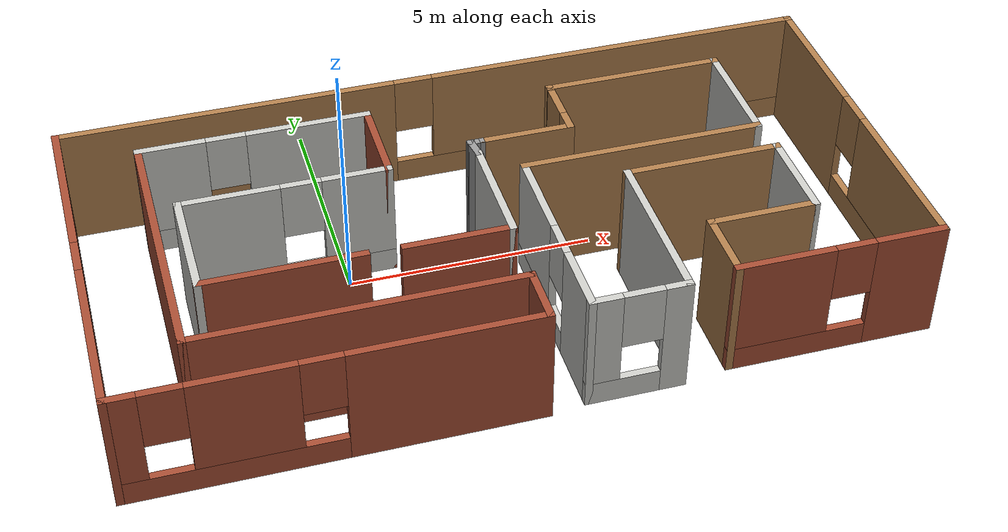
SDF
<?xml version='1.0'?>
<sdf version='1.7'>
  <model name='group.world'>
    <pose>2.65647 -0.719207 0 0 -0 0</pose>
    <link name='Wall_12'>
      <collision name='Wall_12_Collision'>
        <geometry>
          <box>
            <size>3.25 0.15 2.5</size>
          </box>
        </geometry>
        <pose>0 0 1.25 0 -0 0</pose>
      </collision>
      <visual name='Wall_12_Visual'>
        <pose>0 0 1.25 0 -0 0</pose>
        <geometry>
          <box>
            <size>3.25 0.15 2.5</size>
          </box>
        </geometry>
        <material>
          <script>
            <uri>file://media/materials/scripts/gazebo.material</uri>
            <name>Gazebo/Bricks</name>
          </script>
          <ambient>1 1 1 1</ambient>
        </material>
        <meta>
          <layer>0</layer>
        </meta>
      </visual>
      <pose>-4.25 -1.3 0 0 -0 3.14159</pose>
    </link>
    <link name='Wall_13'>
      <collision name='Wall_13_Collision'>
        <geometry>
          <box>
            <size>2.5 0.15 2.5</size>
          </box>
        </geometry>
        <pose>0 0 1.25 0 -0 0</pose>
      </collision>
      <visual name='Wall_13_Visual'>
        <pose>0 0 1.25 0 -0 0</pose>
        <geometry>
          <box>
            <size>2.5 0.15 2.5</size>
          </box>
        </geometry>
        <material>
          <script>
            <uri>file://media/materials/scripts/gazebo.material</uri>
            <name>Gazebo/CeilingTiled</name>
          </script>
          <ambient>1 1 1 1</ambient>
        </material>
        <meta>
          <layer>0</layer>
        </meta>
      </visual>
      <pose>-5.8 -0.125 0 0 -0 1.5708</pose>
    </link>
    <link name='Wall_14'>
      <pose>-3.75 1.05 0 0 -0 0</pose>
      <visual name='Wall_14_Visual_0'>
        <pose>-1.1042 0 1.25 0 -0 0</pose>
        <geometry>
          <box>
            <size>2.0416 0.15 2.5</size>
          </box>
        </geometry>
        <material>
          <script>
            <uri>file://media/materials/scripts/gazebo.material</uri>
            <name>Gazebo/CeilingTiled</name>
          </script>
          <ambient>1 1 1 1</ambient>
        </material>
        <meta>
          <layer>0</layer>
        </meta>
      </visual>
      <collision name='Wall_14_Collision_0'>
        <geometry>
          <box>
            <size>2.0416 0.15 2.5</size>
          </box>
        </geometry>
        <pose>-1.1042 0 1.25 0 -0 0</pose>
      </collision>
      <visual name='Wall_14_Visual_1'>
        <pose>1.0208 0 0.25 0 -0 0</pose>
        <geometry>
          <box>
            <size>2.2084 0.15 0.5</size>
          </box>
        </geometry>
        <material>
          <script>
            <uri>file://media/materials/scripts/gazebo.material</uri>
            <name>Gazebo/CeilingTiled</name>
          </script>
          <ambient>1 1 1 1</ambient>
        </material>
        <meta>
          <layer>0</layer>
        </meta>
      </visual>
      <collision name='Wall_14_Collision_1'>
        <geometry>
          <box>
            <size>2.2084 0.15 0.5</size>
          </box>
        </geometry>
        <pose>1.0208 0 0.25 0 -0 0</pose>
      </collision>
      <visual name='Wall_14_Visual_2'>
        <pose>1.4208 0 1.5 0 -0 0</pose>
        <geometry>
          <box>
            <size>1.4084 0.15 2</size>
          </box>
        </geometry>
        <material>
          <script>
            <uri>file://media/materials/scripts/gazebo.material</uri>
            <name>Gazebo/CeilingTiled</name>
          </script>
          <ambient>1 1 1 1</ambient>
        </material>
        <meta>
          <layer>0</layer>
        </meta>
      </visual>
      <collision name='Wall_14_Collision_2'>
        <geometry>
          <box>
            <size>1.4084 0.15 2</size>
          </box>
        </geometry>
        <pose>1.4208 0 1.5 0 -0 0</pose>
      </collision>
      <visual name='Wall_14_Visual_3'>
        <pose>0.316603 0 1.9 0 -0 0</pose>
        <geometry>
          <box>
            <size>0.8 0.15 1.2</size>
          </box>
        </geometry>
        <material>
          <script>
            <uri>file://media/materials/scripts/gazebo.material</uri>
            <name>Gazebo/CeilingTiled</name>
          </script>
          <ambient>1 1 1 1</ambient>
        </material>
        <meta>
          <layer>0</layer>
        </meta>
      </visual>
      <collision name='Wall_14_Collision_3'>
        <geometry>
          <box>
            <size>0.8 0.15 1.2</size>
          </box>
        </geometry>
        <pose>0.316603 0 1.9 0 -0 0</pose>
      </collision>
    </link>
    <link name='Wall_15'>
      <collision name='Wall_15_Collision'>
        <geometry>
          <box>
            <size>2 0.15 2.5</size>
          </box>
        </geometry>
        <pose>0 0 1.25 0 -0 0</pose>
      </collision>
      <visual name='Wall_15_Visual'>
        <pose>0 0 1.25 0 -0 0</pose>
        <geometry>
          <box>
            <size>2 0.15 2.5</size>
          </box>
        </geometry>
        <material>
          <script>
            <uri>file://media/materials/scripts/gazebo.material</uri>
            <name>Gazebo/Bricks</name>
          </script>
          <ambient>1 1 1 1</ambient>
        </material>
        <meta>
          <layer>0</layer>
        </meta>
      </visual>
      <pose>-1.7 1.975 0 0 -0 1.5708</pose>
    </link>
    <link name='Wall_16'>
      <pose>-4 2.9 0 0 -0 3.14159</pose>
      <visual name='Wall_16_Visual_0'>
        <pose>-1.10471 0 1.25 0 -0 0</pose>
        <geometry>
          <box>
            <size>2.54058 0.15 2.5</size>
          </box>
        </geometry>
        <material>
          <script>
            <uri>file://media/materials/scripts/gazebo.material</uri>
            <name>Gazebo/CeilingTiled</name>
          </script>
          <ambient>1 1 1 1</ambient>
        </material>
        <meta>
          <layer>0</layer>
        </meta>
      </visual>
      <collision name='Wall_16_Collision_0'>
        <geometry>
          <box>
            <size>2.54058 0.15 2.5</size>
          </box>
        </geometry>
        <pose>-1.10471 0 1.25 0 -0 0</pose>
      </collision>
      <visual name='Wall_16_Visual_1'>
        <pose>1.27029 0 0.25 0 -0 0</pose>
        <geometry>
          <box>
            <size>2.20942 0.15 0.5</size>
          </box>
        </geometry>
        <material>
          <script>
            <uri>file://media/materials/scripts/gazebo.material</uri>
            <name>Gazebo/CeilingTiled</name>
          </script>
          <ambient>1 1 1 1</ambient>
        </material>
        <meta>
          <layer>0</layer>
        </meta>
      </visual>
      <collision name='Wall_16_Collision_1'>
        <geometry>
          <box>
            <size>2.20942 0.15 0.5</size>
          </box>
        </geometry>
        <pose>1.27029 0 0.25 0 -0 0</pose>
      </collision>
      <visual name='Wall_16_Visual_2'>
        <pose>1.67029 0 1.5 0 -0 0</pose>
        <geometry>
          <box>
            <size>1.40942 0.15 2</size>
          </box>
        </geometry>
        <material>
          <script>
            <uri>file://media/materials/scripts/gazebo.material</uri>
            <name>Gazebo/CeilingTiled</name>
          </script>
          <ambient>1 1 1 1</ambient>
        </material>
        <meta>
          <layer>0</layer>
        </meta>
      </visual>
      <collision name='Wall_16_Collision_2'>
        <geometry>
          <box>
            <size>1.40942 0.15 2</size>
          </box>
        </geometry>
        <pose>1.67029 0 1.5 0 -0 0</pose>
      </collision>
      <visual name='Wall_16_Visual_3'>
        <pose>0.565578 0 1.9 0 -0 0</pose>
        <geometry>
          <box>
            <size>0.8 0.15 1.2</size>
          </box>
        </geometry>
        <material>
          <script>
            <uri>file://media/materials/scripts/gazebo.material</uri>
            <name>Gazebo/CeilingTiled</name>
          </script>
          <ambient>1 1 1 1</ambient>
        </material>
        <meta>
          <layer>0</layer>
        </meta>
      </visual>
      <collision name='Wall_16_Collision_3'>
        <geometry>
          <box>
            <size>0.8 0.15 1.2</size>
          </box>
        </geometry>
        <pose>0.565578 0 1.9 0 -0 0</pose>
      </collision>
    </link>
    <link name='Wall_17'>
      <collision name='Wall_17_Collision'>
        <geometry>
          <box>
            <size>5.75 0.15 2.5</size>
          </box>
        </geometry>
        <pose>0 0 1.25 0 -0 0</pose>
      </collision>
      <visual name='Wall_17_Visual'>
        <pose>0 0 1.25 0 -0 0</pose>
        <geometry>
          <box>
            <size>5.75 0.15 2.5</size>
          </box>
        </geometry>
        <material>
          <script>
            <uri>file://media/materials/scripts/gazebo.material</uri>
            <name>Gazebo/Bricks</name>
          </script>
          <ambient>1 1 1 1</ambient>
        </material>
        <meta>
          <layer>0</layer>
        </meta>
      </visual>
      <pose>-6.3 0.1 0 0 -0 -1.5708</pose>
    </link>
    <link name='Wall_18'>
      <collision name='Wall_18_Collision'>
        <geometry>
          <box>
            <size>6.5 0.15 2.5</size>
          </box>
        </geometry>
        <pose>0 0 1.25 0 -0 0</pose>
      </collision>
      <visual name='Wall_18_Visual'>
        <pose>0 0 1.25 0 -0 0</pose>
        <geometry>
          <box>
            <size>6.5 0.15 2.5</size>
          </box>
        </geometry>
        <material>
          <script>
            <uri>file://media/materials/scripts/gazebo.material</uri>
            <name>Gazebo/Bricks</name>
          </script>
          <ambient>1 1 1 1</ambient>
        </material>
        <meta>
          <layer>0</layer>
        </meta>
      </visual>
      <pose>-3.125 -2.7 0 0 -0 0</pose>
    </link>
    <link name='Wall_19'>
      <collision name='Wall_19_Collision'>
        <geometry>
          <box>
            <size>1.25 0.15 2.5</size>
          </box>
        </geometry>
        <pose>0 0 1.25 0 -0 0</pose>
      </collision>
      <visual name='Wall_19_Visual'>
        <pose>0 0 1.25 0 -0 0</pose>
        <geometry>
          <box>
            <size>1.25 0.15 2.5</size>
          </box>
        </geometry>
        <material>
          <script>
            <uri>file://media/materials/scripts/gazebo.material</uri>
            <name>Gazebo/Bricks</name>
          </script>
          <ambient>1 1 1 1</ambient>
        </material>
        <meta>
          <layer>0</layer>
        </meta>
      </visual>
      <pose>0.05 -3.25 0 0 -0 -1.5708</pose>
    </link>
    <link name='Wall_2'>
      <pose>-1.32163 -1.31575 0 0 -0 0</pose>
      <visual name='Wall_2_Visual_0'>
        <pose>0 0 0.25 0 -0 0</pose>
        <geometry>
          <box>
            <size>3 0.15 0.5</size>
          </box>
        </geometry>
        <material>
          <script>
            <uri>file://media/materials/scripts/gazebo.material</uri>
            <name>Gazebo/Bricks</name>
          </script>
          <ambient>1 1 1 1</ambient>
        </material>
        <meta>
          <layer>0</layer>
        </meta>
      </visual>
      <collision name='Wall_2_Collision_0'>
        <geometry>
          <box>
            <size>3 0.15 0.5</size>
          </box>
        </geometry>
        <pose>0 0 0.25 0 -0 0</pose>
      </collision>
      <visual name='Wall_2_Visual_1'>
        <pose>0.391426 0 1.5 0 -0 0</pose>
        <geometry>
          <box>
            <size>2.21715 0.15 2</size>
          </box>
        </geometry>
        <material>
          <script>
            <uri>file://media/materials/scripts/gazebo.material</uri>
            <name>Gazebo/Bricks</name>
          </script>
          <ambient>1 1 1 1</ambient>
        </material>
        <meta>
          <layer>0</layer>
        </meta>
      </visual>
      <collision name='Wall_2_Collision_1'>
        <geometry>
          <box>
            <size>2.21715 0.15 2</size>
          </box>
        </geometry>
        <pose>0.391426 0 1.5 0 -0 0</pose>
      </collision>
    </link>
    <link name='Wall_20'>
      <pose>-3.875 -3.8 0 0 -0 3.14159</pose>
      <visual name='Wall_20_Visual_0'>
        <pose>-2.10854 0 1.25 0 -0 0</pose>
        <geometry>
          <box>
            <size>3.78292 0.15 2.5</size>
          </box>
        </geometry>
        <material>
          <script>
            <uri>file://media/materials/scripts/gazebo.material</uri>
            <name>Gazebo/Bricks</name>
          </script>
          <ambient>1 1 1 1</ambient>
        </material>
        <meta>
          <layer>0</layer>
        </meta>
      </visual>
      <collision name='Wall_20_Collision_0'>
        <geometry>
          <box>
            <size>3.78292 0.15 2.5</size>
          </box>
        </geometry>
        <pose>-2.10854 0 1.25 0 -0 0</pose>
      </collision>
      <visual name='Wall_20_Visual_1'>
        <pose>1.89146 0 0.25 0 -0 0</pose>
        <geometry>
          <box>
            <size>4.21708 0.15 0.5</size>
          </box>
        </geometry>
        <material>
          <script>
            <uri>file://media/materials/scripts/gazebo.material</uri>
            <name>Gazebo/Bricks</name>
          </script>
          <ambient>1 1 1 1</ambient>
        </material>
        <meta>
          <layer>0</layer>
        </meta>
      </visual>
      <collision name='Wall_20_Collision_1'>
        <geometry>
          <box>
            <size>4.21708 0.15 0.5</size>
          </box>
        </geometry>
        <pose>1.89146 0 0.25 0 -0 0</pose>
      </collision>
      <visual name='Wall_20_Visual_2'>
        <pose>1.57076 0 1.5 0 -0 0</pose>
        <geometry>
          <box>
            <size>1.97567 0.15 2</size>
          </box>
        </geometry>
        <material>
          <script>
            <uri>file://media/materials/scripts/gazebo.material</uri>
            <name>Gazebo/Bricks</name>
          </script>
          <ambient>1 1 1 1</ambient>
        </material>
        <meta>
          <layer>0</layer>
        </meta>
      </visual>
      <collision name='Wall_20_Collision_2'>
        <geometry>
          <box>
            <size>1.97567 0.15 2</size>
          </box>
        </geometry>
        <pose>1.57076 0 1.5 0 -0 0</pose>
      </collision>
      <visual name='Wall_20_Visual_3'>
        <pose>3.6793 0 1.5 0 -0 0</pose>
        <geometry>
          <box>
            <size>0.641403 0.15 2</size>
          </box>
        </geometry>
        <material>
          <script>
            <uri>file://media/materials/scripts/gazebo.material</uri>
            <name>Gazebo/Bricks</name>
          </script>
          <ambient>1 1 1 1</ambient>
        </material>
        <meta>
          <layer>0</layer>
        </meta>
      </visual>
      <collision name='Wall_20_Collision_3'>
        <geometry>
          <box>
            <size>0.641403 0.15 2</size>
          </box>
        </geometry>
        <pose>3.6793 0 1.5 0 -0 0</pose>
      </collision>
      <visual name='Wall_20_Visual_4'>
        <pose>0.182923 0 1.9 0 -0 0</pose>
        <geometry>
          <box>
            <size>0.8 0.15 1.2</size>
          </box>
        </geometry>
        <material>
          <script>
            <uri>file://media/materials/scripts/gazebo.material</uri>
            <name>Gazebo/Bricks</name>
          </script>
          <ambient>1 1 1 1</ambient>
        </material>
        <meta>
          <layer>0</layer>
        </meta>
      </visual>
      <collision name='Wall_20_Collision_4'>
        <geometry>
          <box>
            <size>0.8 0.15 1.2</size>
          </box>
        </geometry>
        <pose>0.182923 0 1.9 0 -0 0</pose>
      </collision>
      <visual name='Wall_20_Visual_5'>
        <pose>2.9586 0 1.9 0 -0 0</pose>
        <geometry>
          <box>
            <size>0.8 0.15 1.2</size>
          </box>
        </geometry>
        <material>
          <script>
            <uri>file://media/materials/scripts/gazebo.material</uri>
            <name>Gazebo/Bricks</name>
          </script>
          <ambient>1 1 1 1</ambient>
        </material>
        <meta>
          <layer>0</layer>
        </meta>
      </visual>
      <collision name='Wall_20_Collision_5'>
        <geometry>
          <box>
            <size>0.8 0.15 1.2</size>
          </box>
        </geometry>
        <pose>2.9586 0 1.9 0 -0 0</pose>
      </collision>
    </link>
    <link name='Wall_21'>
      <pose>-7.8 -0 0 0 -0 1.5708</pose>
      <visual name='Wall_21_Visual_0'>
        <pose>-2.10255 0 1.25 0 -0 0</pose>
        <geometry>
          <box>
            <size>3.5449 0.15 2.5</size>
          </box>
        </geometry>
        <material>
          <script>
            <uri>file://media/materials/scripts/gazebo.material</uri>
            <name>Gazebo/Bricks</name>
          </script>
          <ambient>1 1 1 1</ambient>
        </material>
        <meta>
          <layer>0</layer>
        </meta>
      </visual>
      <collision name='Wall_21_Collision_0'>
        <geometry>
          <box>
            <size>3.5449 0.15 2.5</size>
          </box>
        </geometry>
        <pose>-2.10255 0 1.25 0 -0 0</pose>
      </collision>
      <visual name='Wall_21_Visual_1'>
        <pose>1.77245 0 0.25 0 -0 0</pose>
        <geometry>
          <box>
            <size>4.2051 0.15 0.5</size>
          </box>
        </geometry>
        <material>
          <script>
            <uri>file://media/materials/scripts/gazebo.material</uri>
            <name>Gazebo/Bricks</name>
          </script>
          <ambient>1 1 1 1</ambient>
        </material>
        <meta>
          <layer>0</layer>
        </meta>
      </visual>
      <collision name='Wall_21_Collision_1'>
        <geometry>
          <box>
            <size>4.2051 0.15 0.5</size>
          </box>
        </geometry>
        <pose>1.77245 0 0.25 0 -0 0</pose>
      </collision>
      <visual name='Wall_21_Visual_2'>
        <pose>2.17245 0 1.5 0 -0 0</pose>
        <geometry>
          <box>
            <size>3.4051 0.15 2</size>
          </box>
        </geometry>
        <material>
          <script>
            <uri>file://media/materials/scripts/gazebo.material</uri>
            <name>Gazebo/Bricks</name>
          </script>
          <ambient>1 1 1 1</ambient>
        </material>
        <meta>
          <layer>0</layer>
        </meta>
      </visual>
      <collision name='Wall_21_Collision_2'>
        <geometry>
          <box>
            <size>3.4051 0.15 2</size>
          </box>
        </geometry>
        <pose>2.17245 0 1.5 0 -0 0</pose>
      </collision>
      <visual name='Wall_21_Visual_3'>
        <pose>0.069904 0 1.9 0 -0 0</pose>
        <geometry>
          <box>
            <size>0.8 0.15 1.2</size>
          </box>
        </geometry>
        <material>
          <script>
            <uri>file://media/materials/scripts/gazebo.material</uri>
            <name>Gazebo/Bricks</name>
          </script>
          <ambient>1 1 1 1</ambient>
        </material>
        <meta>
          <layer>0</layer>
        </meta>
      </visual>
      <collision name='Wall_21_Collision_3'>
        <geometry>
          <box>
            <size>0.8 0.15 1.2</size>
          </box>
        </geometry>
        <pose>0.069904 0 1.9 0 -0 0</pose>
      </collision>
    </link>
    <link name='Wall_22'>
      <pose>0 3.8 0 0 -0 0</pose>
      <visual name='Wall_22_Visual_0'>
        <pose>-4.40133 0 1.25 0 -0 0</pose>
        <geometry>
          <box>
            <size>6.94733 0.15 2.5</size>
          </box>
        </geometry>
        <material>
          <script>
            <uri>file://media/materials/scripts/gazebo.material</uri>
            <name>Gazebo/Wood</name>
          </script>
          <ambient>1 1 1 1</ambient>
        </material>
        <meta>
          <layer>0</layer>
        </meta>
      </visual>
      <collision name='Wall_22_Collision_0'>
        <geometry>
          <box>
            <size>6.94733 0.15 2.5</size>
          </box>
        </geometry>
        <pose>-4.40133 0 1.25 0 -0 0</pose>
      </collision>
      <visual name='Wall_22_Visual_1'>
        <pose>3.47367 0 0.25 0 -0 0</pose>
        <geometry>
          <box>
            <size>8.80267 0.15 0.5</size>
          </box>
        </geometry>
        <material>
          <script>
            <uri>file://media/materials/scripts/gazebo.material</uri>
            <name>Gazebo/Wood</name>
          </script>
          <ambient>1 1 1 1</ambient>
        </material>
        <meta>
          <layer>0</layer>
        </meta>
      </visual>
      <collision name='Wall_22_Collision_1'>
        <geometry>
          <box>
            <size>8.80267 0.15 0.5</size>
          </box>
        </geometry>
        <pose>3.47367 0 0.25 0 -0 0</pose>
      </collision>
      <visual name='Wall_22_Visual_2'>
        <pose>3.87367 0 1.5 0 -0 0</pose>
        <geometry>
          <box>
            <size>8.00267 0.15 2</size>
          </box>
        </geometry>
        <material>
          <script>
            <uri>file://media/materials/scripts/gazebo.material</uri>
            <name>Gazebo/Wood</name>
          </script>
          <ambient>1 1 1 1</ambient>
        </material>
        <meta>
          <layer>0</layer>
        </meta>
      </visual>
      <collision name='Wall_22_Collision_2'>
        <geometry>
          <box>
            <size>8.00267 0.15 2</size>
          </box>
        </geometry>
        <pose>3.87367 0 1.5 0 -0 0</pose>
      </collision>
      <visual name='Wall_22_Visual_3'>
        <pose>-0.527668 0 1.9 0 -0 0</pose>
        <geometry>
          <box>
            <size>0.8 0.15 1.2</size>
          </box>
        </geometry>
        <material>
          <script>
            <uri>file://media/materials/scripts/gazebo.material</uri>
            <name>Gazebo/Wood</name>
          </script>
          <ambient>1 1 1 1</ambient>
        </material>
        <meta>
          <layer>0</layer>
        </meta>
      </visual>
      <collision name='Wall_22_Collision_3'>
        <geometry>
          <box>
            <size>0.8 0.15 1.2</size>
          </box>
        </geometry>
        <pose>-0.527668 0 1.9 0 -0 0</pose>
      </collision>
    </link>
    <link name='Wall_23'>
      <pose>7.8 0.125 0 0 -0 -1.5708</pose>
      <visual name='Wall_23_Visual_0'>
        <pose>-2.20937 0 1.25 0 -0 0</pose>
        <geometry>
          <box>
            <size>3.08127 0.15 2.5</size>
          </box>
        </geometry>
        <material>
          <script>
            <uri>file://media/materials/scripts/gazebo.material</uri>
            <name>Gazebo/Wood</name>
          </script>
          <ambient>1 1 1 1</ambient>
        </material>
        <meta>
          <layer>0</layer>
        </meta>
      </visual>
      <collision name='Wall_23_Collision_0'>
        <geometry>
          <box>
            <size>3.08127 0.15 2.5</size>
          </box>
        </geometry>
        <pose>-2.20937 0 1.25 0 -0 0</pose>
      </collision>
      <visual name='Wall_23_Visual_1'>
        <pose>1.54063 0 0.25 0 -0 0</pose>
        <geometry>
          <box>
            <size>4.41873 0.15 0.5</size>
          </box>
        </geometry>
        <material>
          <script>
            <uri>file://media/materials/scripts/gazebo.material</uri>
            <name>Gazebo/Wood</name>
          </script>
          <ambient>1 1 1 1</ambient>
        </material>
        <meta>
          <layer>0</layer>
        </meta>
      </visual>
      <collision name='Wall_23_Collision_1'>
        <geometry>
          <box>
            <size>4.41873 0.15 0.5</size>
          </box>
        </geometry>
        <pose>1.54063 0 0.25 0 -0 0</pose>
      </collision>
      <visual name='Wall_23_Visual_2'>
        <pose>1.94063 0 1.5 0 -0 0</pose>
        <geometry>
          <box>
            <size>3.61873 0.15 2</size>
          </box>
        </geometry>
        <material>
          <script>
            <uri>file://media/materials/scripts/gazebo.material</uri>
            <name>Gazebo/Wood</name>
          </script>
          <ambient>1 1 1 1</ambient>
        </material>
        <meta>
          <layer>0</layer>
        </meta>
      </visual>
      <collision name='Wall_23_Collision_2'>
        <geometry>
          <box>
            <size>3.61873 0.15 2</size>
          </box>
        </geometry>
        <pose>1.94063 0 1.5 0 -0 0</pose>
      </collision>
      <visual name='Wall_23_Visual_3'>
        <pose>-0.268733 0 1.9 0 -0 0</pose>
        <geometry>
          <box>
            <size>0.8 0.15 1.2</size>
          </box>
        </geometry>
        <material>
          <script>
            <uri>file://media/materials/scripts/gazebo.material</uri>
            <name>Gazebo/Wood</name>
          </script>
          <ambient>1 1 1 1</ambient>
        </material>
        <meta>
          <layer>0</layer>
        </meta>
      </visual>
      <collision name='Wall_23_Collision_3'>
        <geometry>
          <box>
            <size>0.8 0.15 1.2</size>
          </box>
        </geometry>
        <pose>-0.268733 0 1.9 0 -0 0</pose>
      </collision>
    </link>
    <link name='Wall_24'>
      <pose>5.75 -3.55 0 0 -0 3.14159</pose>
      <visual name='Wall_24_Visual_0'>
        <pose>-1.40101 0 1.25 0 -0 0</pose>
        <geometry>
          <box>
            <size>1.44798 0.15 2.5</size>
          </box>
        </geometry>
        <material>
          <script>
            <uri>file://media/materials/scripts/gazebo.material</uri>
            <name>Gazebo/Bricks</name>
          </script>
          <ambient>1 1 1 1</ambient>
        </material>
        <meta>
          <layer>0</layer>
        </meta>
      </visual>
      <collision name='Wall_24_Collision_0'>
        <geometry>
          <box>
            <size>1.44798 0.15 2.5</size>
          </box>
        </geometry>
        <pose>-1.40101 0 1.25 0 -0 0</pose>
      </collision>
      <visual name='Wall_24_Visual_1'>
        <pose>0.723989 0 0.25 0 -0 0</pose>
        <geometry>
          <box>
            <size>2.80202 0.15 0.5</size>
          </box>
        </geometry>
        <material>
          <script>
            <uri>file://media/materials/scripts/gazebo.material</uri>
            <name>Gazebo/Bricks</name>
          </script>
          <ambient>1 1 1 1</ambient>
        </material>
        <meta>
          <layer>0</layer>
        </meta>
      </visual>
      <collision name='Wall_24_Collision_1'>
        <geometry>
          <box>
            <size>2.80202 0.15 0.5</size>
          </box>
        </geometry>
        <pose>0.723989 0 0.25 0 -0 0</pose>
      </collision>
      <visual name='Wall_24_Visual_2'>
        <pose>1.12399 0 1.5 0 -0 0</pose>
        <geometry>
          <box>
            <size>2.00202 0.15 2</size>
          </box>
        </geometry>
        <material>
          <script>
            <uri>file://media/materials/scripts/gazebo.material</uri>
            <name>Gazebo/Bricks</name>
          </script>
          <ambient>1 1 1 1</ambient>
        </material>
        <meta>
          <layer>0</layer>
        </meta>
      </visual>
      <collision name='Wall_24_Collision_2'>
        <geometry>
          <box>
            <size>2.00202 0.15 2</size>
          </box>
        </geometry>
        <pose>1.12399 0 1.5 0 -0 0</pose>
      </collision>
      <visual name='Wall_24_Visual_3'>
        <pose>-0.277021 0 1.9 0 -0 0</pose>
        <geometry>
          <box>
            <size>0.8 0.15 1.2</size>
          </box>
        </geometry>
        <material>
          <script>
            <uri>file://media/materials/scripts/gazebo.material</uri>
            <name>Gazebo/Bricks</name>
          </script>
          <ambient>1 1 1 1</ambient>
        </material>
        <meta>
          <layer>0</layer>
        </meta>
      </visual>
      <collision name='Wall_24_Collision_3'>
        <geometry>
          <box>
            <size>0.8 0.15 1.2</size>
          </box>
        </geometry>
        <pose>-0.277021 0 1.9 0 -0 0</pose>
      </collision>
    </link>
    <link name='Wall_25'>
      <collision name='Wall_25_Collision'>
        <geometry>
          <box>
            <size>1.5 0.15 2.5</size>
          </box>
        </geometry>
        <pose>0 0 1.25 0 -0 0</pose>
      </collision>
      <visual name='Wall_25_Visual'>
        <pose>0 0 1.25 0 -0 0</pose>
        <geometry>
          <box>
            <size>1.5 0.15 2.5</size>
          </box>
        </geometry>
        <material>
          <script>
            <uri>file://media/materials/scripts/gazebo.material</uri>
            <name>Gazebo/Wood</name>
          </script>
          <ambient>1 1 1 1</ambient>
        </material>
        <meta>
          <layer>0</layer>
        </meta>
      </visual>
      <pose>3.7 -2.875 0 0 -0 1.5708</pose>
    </link>
    <link name='Wall_26'>
      <collision name='Wall_26_Collision'>
        <geometry>
          <box>
            <size>2.25 0.15 2.5</size>
          </box>
        </geometry>
        <pose>0 0 1.25 0 -0 0</pose>
      </collision>
      <visual name='Wall_26_Visual'>
        <pose>0 0 1.25 0 -0 0</pose>
        <geometry>
          <box>
            <size>2.25 0.15 2.5</size>
          </box>
        </geometry>
        <material>
          <script>
            <uri>file://media/materials/scripts/gazebo.material</uri>
            <name>Gazebo/Wood</name>
          </script>
          <ambient>1 1 1 1</ambient>
        </material>
        <meta>
          <layer>0</layer>
        </meta>
      </visual>
      <pose>4.75 -2.2 0 0 -0 0</pose>
    </link>
    <link name='Wall_27'>
      <collision name='Wall_27_Collision'>
        <geometry>
          <box>
            <size>2 0.15 2.5</size>
          </box>
        </geometry>
        <pose>0 0 1.25 0 -0 0</pose>
      </collision>
      <visual name='Wall_27_Visual'>
        <pose>0 0 1.25 0 -0 0</pose>
        <geometry>
          <box>
            <size>2 0.15 2.5</size>
          </box>
        </geometry>
        <material>
          <script>
            <uri>file://media/materials/scripts/gazebo.material</uri>
            <name>Gazebo/CeilingTiled</name>
          </script>
          <ambient>1 1 1 1</ambient>
        </material>
        <meta>
          <layer>0</layer>
        </meta>
      </visual>
      <pose>5.8 -1.275 0 0 -0 1.5708</pose>
    </link>
    <link name='Wall_28'>
      <collision name='Wall_28_Collision'>
        <geometry>
          <box>
            <size>3.25 0.15 2.5</size>
          </box>
        </geometry>
        <pose>0 0 1.25 0 -0 0</pose>
      </collision>
      <visual name='Wall_28_Visual'>
        <pose>0 0 1.25 0 -0 0</pose>
        <geometry>
          <box>
            <size>3.25 0.15 2.5</size>
          </box>
        </geometry>
        <material>
          <script>
            <uri>file://media/materials/scripts/gazebo.material</uri>
            <name>Gazebo/Wood</name>
          </script>
          <ambient>1 1 1 1</ambient>
        </material>
        <meta>
          <layer>0</layer>
        </meta>
      </visual>
      <pose>4.25 -0.35 0 0 -0 3.14159</pose>
    </link>
    <link name='Wall_29'>
      <collision name='Wall_29_Collision'>
        <geometry>
          <box>
            <size>3.5 0.15 2.5</size>
          </box>
        </geometry>
        <pose>0 0 1.25 0 -0 0</pose>
      </collision>
      <visual name='Wall_29_Visual'>
        <pose>0 0 1.25 0 -0 0</pose>
        <geometry>
          <box>
            <size>3.5 0.15 2.5</size>
          </box>
        </geometry>
        <material>
          <script>
            <uri>file://media/materials/scripts/gazebo.material</uri>
            <name>Gazebo/CeilingTiled</name>
          </script>
          <ambient>1 1 1 1</ambient>
        </material>
        <meta>
          <layer>0</layer>
        </meta>
      </visual>
      <pose>2.7 -2.025 0 0 -0 -1.5708</pose>
    </link>
    <link name='Wall_3'>
      <collision name='Wall_3_Collision'>
        <geometry>
          <box>
            <size>2.5 0.15 2.5</size>
          </box>
        </geometry>
        <pose>0 0 1.25 0 -0 0</pose>
      </collision>
      <visual name='Wall_3_Visual'>
        <pose>0 0 1.25 0 -0 0</pose>
        <geometry>
          <box>
            <size>2.5 0.15 2.5</size>
          </box>
        </geometry>
        <material>
          <script>
            <uri>file://media/materials/scripts/gazebo.material</uri>
            <name>Gazebo/CeilingTiled</name>
          </script>
          <ambient>1 1 1 1</ambient>
        </material>
        <meta>
          <layer>0</layer>
        </meta>
      </visual>
      <pose>0.103367 -0.14075 0 0 -0 1.5708</pose>
    </link>
    <link name='Wall_30'>
      <pose>1.775 -3.7 0 0 -0 3.14159</pose>
      <visual name='Wall_30_Visual_0'>
        <pose>-0.732691 0 1.25 0 -0 0</pose>
        <geometry>
          <box>
            <size>0.534619 0.15 2.5</size>
          </box>
        </geometry>
        <material>
          <script>
            <uri>file://media/materials/scripts/gazebo.material</uri>
            <name>Gazebo/CeilingTiled</name>
          </script>
          <ambient>1 1 1 1</ambient>
        </material>
        <meta>
          <layer>0</layer>
        </meta>
      </visual>
      <collision name='Wall_30_Collision_0'>
        <geometry>
          <box>
            <size>0.534619 0.15 2.5</size>
          </box>
        </geometry>
        <pose>-0.732691 0 1.25 0 -0 0</pose>
      </collision>
      <visual name='Wall_30_Visual_1'>
        <pose>0.267309 0 0.25 0 -0 0</pose>
        <geometry>
          <box>
            <size>1.46538 0.15 0.5</size>
          </box>
        </geometry>
        <material>
          <script>
            <uri>file://media/materials/scripts/gazebo.material</uri>
            <name>Gazebo/CeilingTiled</name>
          </script>
          <ambient>1 1 1 1</ambient>
        </material>
        <meta>
          <layer>0</layer>
        </meta>
      </visual>
      <collision name='Wall_30_Collision_1'>
        <geometry>
          <box>
            <size>1.46538 0.15 0.5</size>
          </box>
        </geometry>
        <pose>0.267309 0 0.25 0 -0 0</pose>
      </collision>
      <visual name='Wall_30_Visual_2'>
        <pose>0.667309 0 1.5 0 -0 0</pose>
        <geometry>
          <box>
            <size>0.665381 0.15 2</size>
          </box>
        </geometry>
        <material>
          <script>
            <uri>file://media/materials/scripts/gazebo.material</uri>
            <name>Gazebo/CeilingTiled</name>
          </script>
          <ambient>1 1 1 1</ambient>
        </material>
        <meta>
          <layer>0</layer>
        </meta>
      </visual>
      <collision name='Wall_30_Collision_2'>
        <geometry>
          <box>
            <size>0.665381 0.15 2</size>
          </box>
        </geometry>
        <pose>0.667309 0 1.5 0 -0 0</pose>
      </collision>
      <visual name='Wall_30_Visual_3'>
        <pose>-0.065381 0 1.9 0 -0 0</pose>
        <geometry>
          <box>
            <size>0.8 0.15 1.2</size>
          </box>
        </geometry>
        <material>
          <script>
            <uri>file://media/materials/scripts/gazebo.material</uri>
            <name>Gazebo/CeilingTiled</name>
          </script>
          <ambient>1 1 1 1</ambient>
        </material>
        <meta>
          <layer>0</layer>
        </meta>
      </visual>
      <collision name='Wall_30_Collision_3'>
        <geometry>
          <box>
            <size>0.8 0.15 1.2</size>
          </box>
        </geometry>
        <pose>-0.065381 0 1.9 0 -0 0</pose>
      </collision>
    </link>
    <link name='Wall_31'>
      <pose>0.85 -1.65 0 0 -0 1.5708</pose>
      <visual name='Wall_31_Visual_0'>
        <pose>-1.3856 0 1.25 0 -0 0</pose>
        <geometry>
          <box>
            <size>1.4788 0.15 2.5</size>
          </box>
        </geometry>
        <material>
          <script>
            <uri>file://media/materials/scripts/gazebo.material</uri>
            <name>Gazebo/CeilingTiled</name>
          </script>
          <ambient>1 1 1 1</ambient>
        </material>
        <meta>
          <layer>0</layer>
        </meta>
      </visual>
      <collision name='Wall_31_Collision_0'>
        <geometry>
          <box>
            <size>1.4788 0.15 2.5</size>
          </box>
        </geometry>
        <pose>-1.3856 0 1.25 0 -0 0</pose>
      </collision>
      <visual name='Wall_31_Visual_1'>
        <pose>0.739401 0 0.25 0 -0 0</pose>
        <geometry>
          <box>
            <size>2.7712 0.15 0.5</size>
          </box>
        </geometry>
        <material>
          <script>
            <uri>file://media/materials/scripts/gazebo.material</uri>
            <name>Gazebo/CeilingTiled</name>
          </script>
          <ambient>1 1 1 1</ambient>
        </material>
        <meta>
          <layer>0</layer>
        </meta>
      </visual>
      <collision name='Wall_31_Collision_1'>
        <geometry>
          <box>
            <size>2.7712 0.15 0.5</size>
          </box>
        </geometry>
        <pose>0.739401 0 0.25 0 -0 0</pose>
      </collision>
      <visual name='Wall_31_Visual_2'>
        <pose>1.1394 0 1.5 0 -0 0</pose>
        <geometry>
          <box>
            <size>1.9712 0.15 2</size>
          </box>
        </geometry>
        <material>
          <script>
            <uri>file://media/materials/scripts/gazebo.material</uri>
            <name>Gazebo/CeilingTiled</name>
          </script>
          <ambient>1 1 1 1</ambient>
        </material>
        <meta>
          <layer>0</layer>
        </meta>
      </visual>
      <collision name='Wall_31_Collision_2'>
        <geometry>
          <box>
            <size>1.9712 0.15 2</size>
          </box>
        </geometry>
        <pose>1.1394 0 1.5 0 -0 0</pose>
      </collision>
      <visual name='Wall_31_Visual_3'>
        <pose>-0.246197 0 1.9 0 -0 0</pose>
        <geometry>
          <box>
            <size>0.8 0.15 1.2</size>
          </box>
        </geometry>
        <material>
          <script>
            <uri>file://media/materials/scripts/gazebo.material</uri>
            <name>Gazebo/CeilingTiled</name>
          </script>
          <ambient>1 1 1 1</ambient>
        </material>
        <meta>
          <layer>0</layer>
        </meta>
      </visual>
      <collision name='Wall_31_Collision_3'>
        <geometry>
          <box>
            <size>0.8 0.15 1.2</size>
          </box>
        </geometry>
        <pose>-0.246197 0 1.9 0 -0 0</pose>
      </collision>
    </link>
    <link name='Wall_32'>
      <collision name='Wall_32_Collision'>
        <geometry>
          <box>
            <size>5 0.15 2.5</size>
          </box>
        </geometry>
        <pose>0 0 1.25 0 -0 0</pose>
      </collision>
      <visual name='Wall_32_Visual'>
        <pose>0 0 1.25 0 -0 0</pose>
        <geometry>
          <box>
            <size>5 0.15 2.5</size>
          </box>
        </geometry>
        <material>
          <script>
            <uri>file://media/materials/scripts/gazebo.material</uri>
            <name>Gazebo/Wood</name>
          </script>
          <ambient>1 1 1 1</ambient>
        </material>
        <meta>
          <layer>0</layer>
        </meta>
      </visual>
      <pose>3.275 0.4 0 0 -0 0</pose>
    </link>
    <link name='Wall_33'>
      <collision name='Wall_33_Collision'>
        <geometry>
          <box>
            <size>2.5 0.15 2.5</size>
          </box>
        </geometry>
        <pose>0 0 1.25 0 -0 0</pose>
      </collision>
      <visual name='Wall_33_Visual'>
        <pose>0 0 1.25 0 -0 0</pose>
        <geometry>
          <box>
            <size>2.5 0.15 2.5</size>
          </box>
        </geometry>
        <material>
          <script>
            <uri>file://media/materials/scripts/gazebo.material</uri>
            <name>Gazebo/CeilingTiled</name>
          </script>
          <ambient>1 1 1 1</ambient>
        </material>
        <meta>
          <layer>0</layer>
        </meta>
      </visual>
      <pose>5.7 1.575 0 0 -0 1.5708</pose>
    </link>
    <link name='Wall_34'>
      <collision name='Wall_34_Collision'>
        <geometry>
          <box>
            <size>3.75 0.15 2.5</size>
          </box>
        </geometry>
        <pose>0 0 1.25 0 -0 0</pose>
      </collision>
      <visual name='Wall_34_Visual'>
        <pose>0 0 1.25 0 -0 0</pose>
        <geometry>
          <box>
            <size>3.75 0.15 2.5</size>
          </box>
        </geometry>
        <material>
          <script>
            <uri>file://media/materials/scripts/gazebo.material</uri>
            <name>Gazebo/Wood</name>
          </script>
          <ambient>1 1 1 1</ambient>
        </material>
        <meta>
          <layer>0</layer>
        </meta>
      </visual>
      <pose>3.9 2.75 0 0 -0 3.14159</pose>
    </link>
    <link name='Wall_35'>
      <pose>2.1 2.075 0 0 -0 -1.5708</pose>
      <visual name='Wall_35_Visual_0'>
        <pose>-0.658615 0 1.25 0 -0 0</pose>
        <geometry>
          <box>
            <size>0.182769 0.15 2.5</size>
          </box>
        </geometry>
        <material>
          <script>
            <uri>file://media/materials/scripts/gazebo.material</uri>
            <name>Gazebo/Wood</name>
          </script>
          <ambient>1 1 1 1</ambient>
        </material>
        <meta>
          <layer>0</layer>
        </meta>
      </visual>
      <collision name='Wall_35_Collision_0'>
        <geometry>
          <box>
            <size>0.182769 0.15 2.5</size>
          </box>
        </geometry>
        <pose>-0.658615 0 1.25 0 -0 0</pose>
      </collision>
      <visual name='Wall_35_Visual_1'>
        <pose>0.091385 0 0.25 0 -0 0</pose>
        <geometry>
          <box>
            <size>1.31723 0.15 0.5</size>
          </box>
        </geometry>
        <material>
          <script>
            <uri>file://media/materials/scripts/gazebo.material</uri>
            <name>Gazebo/Wood</name>
          </script>
          <ambient>1 1 1 1</ambient>
        </material>
        <meta>
          <layer>0</layer>
        </meta>
      </visual>
      <collision name='Wall_35_Collision_1'>
        <geometry>
          <box>
            <size>1.31723 0.15 0.5</size>
          </box>
        </geometry>
        <pose>0.091385 0 0.25 0 -0 0</pose>
      </collision>
      <visual name='Wall_35_Visual_2'>
        <pose>0.491385 0 1.5 0 -0 0</pose>
        <geometry>
          <box>
            <size>0.517231 0.15 2</size>
          </box>
        </geometry>
        <material>
          <script>
            <uri>file://media/materials/scripts/gazebo.material</uri>
            <name>Gazebo/Wood</name>
          </script>
          <ambient>1 1 1 1</ambient>
        </material>
        <meta>
          <layer>0</layer>
        </meta>
      </visual>
      <collision name='Wall_35_Collision_2'>
        <geometry>
          <box>
            <size>0.517231 0.15 2</size>
          </box>
        </geometry>
        <pose>0.491385 0 1.5 0 -0 0</pose>
      </collision>
      <visual name='Wall_35_Visual_3'>
        <pose>-0.167231 0 1.9 0 -0 0</pose>
        <geometry>
          <box>
            <size>0.8 0.15 1.2</size>
          </box>
        </geometry>
        <material>
          <script>
            <uri>file://media/materials/scripts/gazebo.material</uri>
            <name>Gazebo/Wood</name>
          </script>
          <ambient>1 1 1 1</ambient>
        </material>
        <meta>
          <layer>0</layer>
        </meta>
      </visual>
      <collision name='Wall_35_Collision_3'>
        <geometry>
          <box>
            <size>0.8 0.15 1.2</size>
          </box>
        </geometry>
        <pose>-0.167231 0 1.9 0 -0 0</pose>
      </collision>
    </link>
    <link name='Wall_36'>
      <collision name='Wall_36_Collision'>
        <geometry>
          <box>
            <size>2 0.15 2.5</size>
          </box>
        </geometry>
        <pose>0 0 1.25 0 -0 0</pose>
      </collision>
      <visual name='Wall_36_Visual'>
        <pose>0 0 1.25 0 -0 0</pose>
        <geometry>
          <box>
            <size>2 0.15 2.5</size>
          </box>
        </geometry>
        <material>
          <script>
            <uri>file://media/materials/scripts/gazebo.material</uri>
            <name>Gazebo/Wood</name>
          </script>
          <ambient>1 1 1 1</ambient>
        </material>
        <meta>
          <layer>0</layer>
        </meta>
      </visual>
      <pose>1.175 1.4 0 0 -0 3.14159</pose>
    </link>
    <link name='Wall_37'>
      <collision name='Wall_37_Collision'>
        <geometry>
          <box>
            <size>0.25 0.15 2.5</size>
          </box>
        </geometry>
        <pose>0 0 1.25 0 -0 0</pose>
      </collision>
      <visual name='Wall_37_Visual'>
        <pose>0 0 1.25 0 -0 0</pose>
        <geometry>
          <box>
            <size>0.25 0.15 2.5</size>
          </box>
        </geometry>
        <material>
          <script>
            <uri>file://media/materials/scripts/gazebo.material</uri>
            <name>Gazebo/Grey</name>
          </script>
          <ambient>1 1 1 1</ambient>
        </material>
        <meta>
          <layer>0</layer>
        </meta>
      </visual>
      <pose>0.2 1.4 0 0 -0 3.14159</pose>
    </link>
    <link name='Wall_38'>
      <collision name='Wall_38_Collision'>
        <geometry>
          <box>
            <size>0.15 0.15 2.5</size>
          </box>
        </geometry>
        <pose>0 0 1.25 0 -0 0</pose>
      </collision>
      <visual name='Wall_38_Visual'>
        <pose>0 0 1.25 0 -0 0</pose>
        <geometry>
          <box>
            <size>0.15 0.15 2.5</size>
          </box>
        </geometry>
        <material>
          <script>
            <uri>file://media/materials/scripts/gazebo.material</uri>
            <name>Gazebo/Grey</name>
          </script>
          <ambient>1 1 1 1</ambient>
        </material>
        <meta>
          <layer>0</layer>
        </meta>
      </visual>
      <pose>0.15 1.4 0 0 -0 0</pose>
    </link>
    <link name='Wall_39'>
      <collision name='Wall_39_Collision'>
        <geometry>
          <box>
            <size>0.25 0.15 2.5</size>
          </box>
        </geometry>
        <pose>0 0 1.25 0 -0 0</pose>
      </collision>
      <visual name='Wall_39_Visual'>
        <pose>0 0 1.25 0 -0 0</pose>
        <geometry>
          <box>
            <size>0.25 0.15 2.5</size>
          </box>
        </geometry>
        <material>
          <script>
            <uri>file://media/materials/scripts/gazebo.material</uri>
            <name>Gazebo/Grey</name>
          </script>
          <ambient>1 1 1 1</ambient>
        </material>
        <meta>
          <layer>0</layer>
        </meta>
      </visual>
      <pose>0.1 1.4 0 0 -0 3.14159</pose>
    </link>
    <link name='Wall_40'>
      <collision name='Wall_40_Collision'>
        <geometry>
          <box>
            <size>0.519622 0.15 2.5</size>
          </box>
        </geometry>
        <pose>0 0 1.25 0 -0 0</pose>
      </collision>
      <visual name='Wall_40_Visual'>
        <pose>0 0 1.25 0 -0 0</pose>
        <geometry>
          <box>
            <size>0.519622 0.15 2.5</size>
          </box>
        </geometry>
        <material>
          <script>
            <uri>file://media/materials/scripts/gazebo.material</uri>
            <name>Gazebo/Grey</name>
          </script>
          <ambient>1 1 1 1</ambient>
        </material>
        <meta>
          <layer>0</layer>
        </meta>
      </visual>
      <pose>0.076684 1.21713 0 0 -0 -1.42591</pose>
    </link>
    <static>1</static>
  </model>
</sdf>
